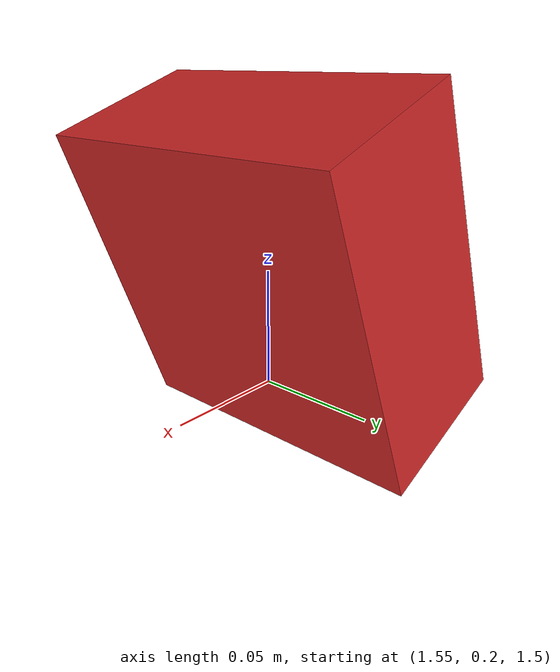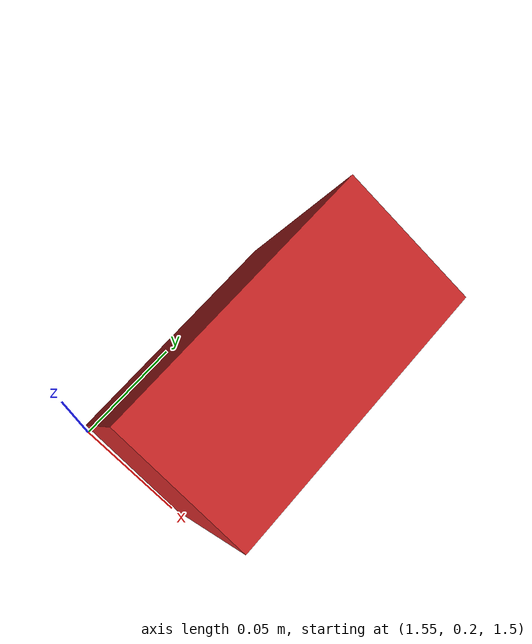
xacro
<?xml version="1.0"?>
<robot xmlns:xacro="http://ros.org/wiki/xacro" name="camera" >

  <!-- Include camera description -->
  <xacro:include filename="$(find project)/urdf/inc/camera_model.xacro" />

  <link name="world" />

  <!-- Link camera with world joint -->
  <joint name="camera_world_joint" type="fixed">
    <parent link="world" />
    <child link = "camera_link" />
    <origin xyz="1.6 0.25 1.575" rpy="0.0 ${pi/2.6} ${pi}" />
  </joint>

</robot>

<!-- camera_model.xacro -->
<robot xmlns:xacro="http://www.ros.org/wiki/xacro">

    <xacro:include filename="$(find project)/urdf/inc/camera.gazebo.xacro"/>

 <!-- Camera -->
  <link name="camera_link">
    <collision>
      <origin xyz="0 0 0" rpy="0 0 0"/>
      <geometry>
    <box size="0.1 0.1 0.05"/>
      </geometry>
    </collision>

    <visual>
      <origin xyz="0 0 0" rpy="0 0 0"/>
      <geometry>
    <box size="0.1 0.1 0.05"/>
      </geometry>
      <material name="red"/>
    </visual>

    <inertial>
      <mass value="1e-5" />
      <origin xyz="0 0 0" rpy="0 0 0"/>
      <inertia ixx="1e-6" ixy="0" ixz="0" iyy="1e-6" iyz="0" izz="1e-6" />
    </inertial>
  </link>

</robot>
